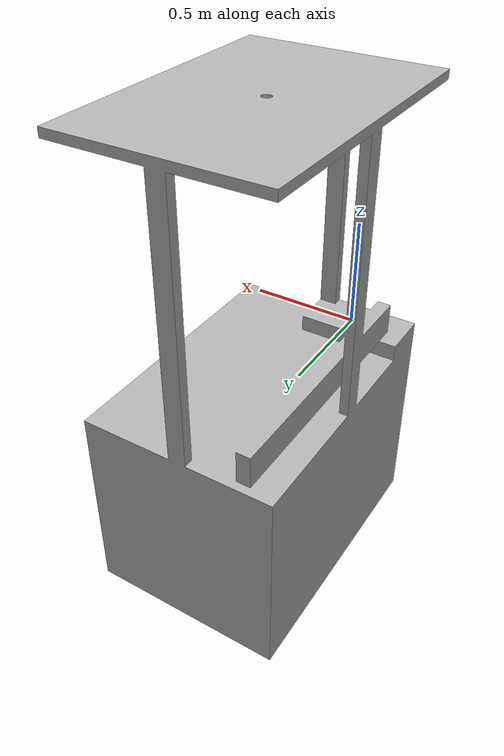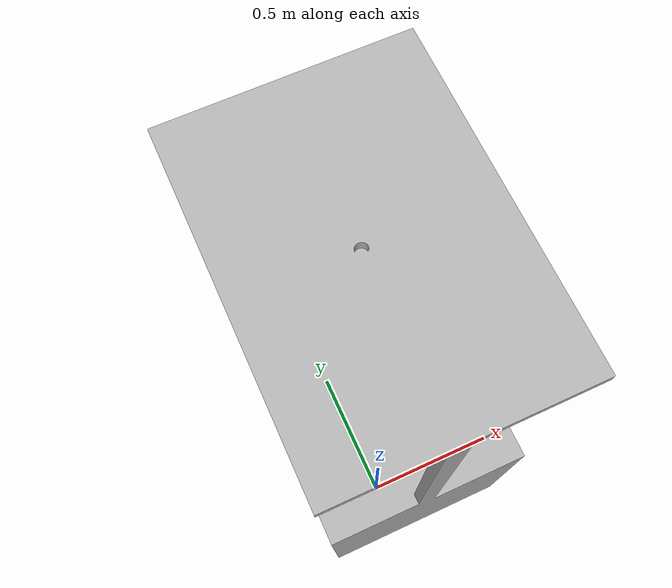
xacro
<?xml version="1.0"?>
<robot xmlns:xacro="http://www.ros.org/wiki/xacro" name="workspace">

    <!-- Insert Macros -->
    <xacro:include filename="$(find kls_description)/urdf/workspace_macro.xacro" />

    <!-- Parameters -->
    <xacro:arg name="prefix" default="" />

    <!-- Create base link -->
    <link name="$(arg prefix)base_link" />

    <!-- Workspace -->
    <xacro:workspace prefix="$(arg prefix)" parent="$(arg prefix)base_link">
        <origin xyz="0.0 0.0 0.0" rpy="0.0 0.0 0.0" />
    </xacro:workspace>

</robot>

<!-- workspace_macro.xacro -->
<robot xmlns:xacro="http://wiki.ros.org/xacro">
    <xacro:macro name="workspace"
        params="prefix parent use_camera:=false camera_tilt_degrees:=0.0 *origin">

        <!-- workspace links -->
        <link name="${prefix}table_link">
            <visual>
                <origin xyz="0.0 0.0 0.0" rpy="0.0 0.0 0.0" />
                <geometry>
                    <mesh filename="package://kls_description/meshes/visual/kls_table.dae"
                        scale="1.0 1.0 1.0" />
                </geometry>
                <material name="workspace_grey">
                    <color rgba="0.7 0.7 0.7 1.0" />
                </material>
            </visual>
            <collision>
                <origin xyz="0.0 0.0 0.0" rpy="0.0 0.0 0.0" />
                <geometry>
                    <mesh
                        filename="package://kls_description/meshes/collision/kls_table_collision.stl"
                        scale="1.0 1.0 1.0" />
                </geometry>
            </collision>
        </link>

        <!-- base joint -->
        <joint name="${prefix}_table_joint" type="fixed">
            <parent link="${parent}" />
            <child link="${prefix}table_link" />
            <xacro:insert_block name="origin" />
        </joint>

        <!-- Optional camera holder integration -->
        <xacro:if value="${use_camera}">
            <xacro:include
                filename="$(find camera_holder_description)/urdf/camera_holder_macro.xacro" />
            <xacro:camera_holder
                parent="${prefix}table_link"
                prefix="${prefix}"
                camera_tilt_degrees="${camera_tilt_degrees}">
                <origin xyz="-0.22 0.48 1.10" rpy="0.0 ${pi/2} 0.0" />
            </xacro:camera_holder>
        </xacro:if>

    </xacro:macro>
</robot>
